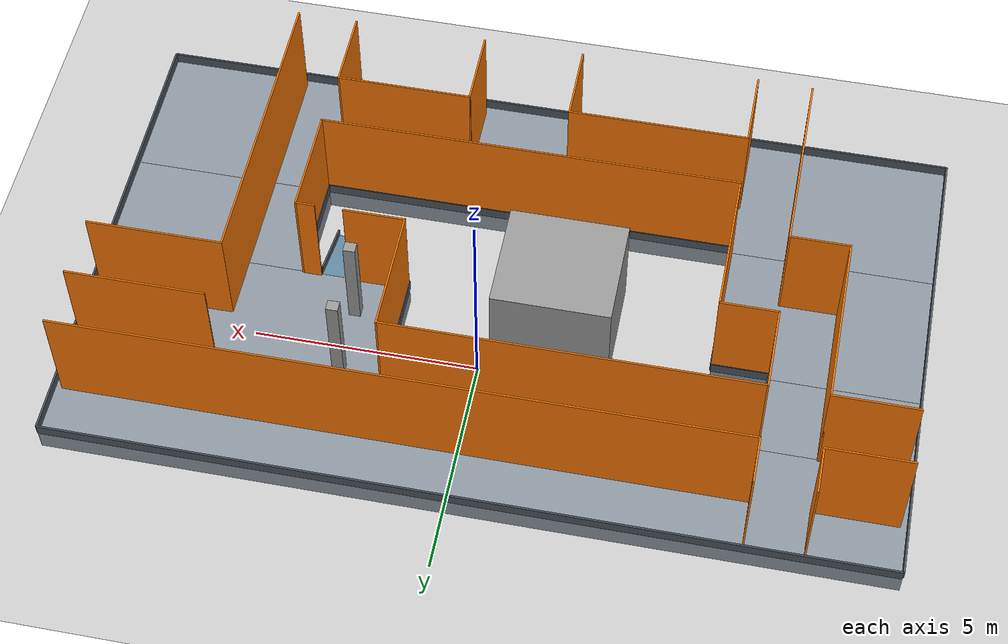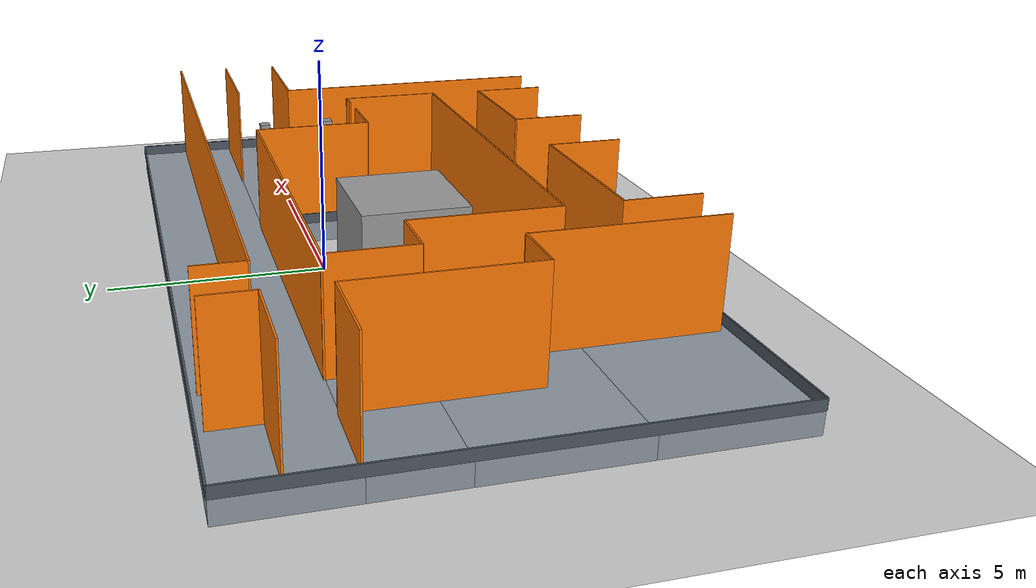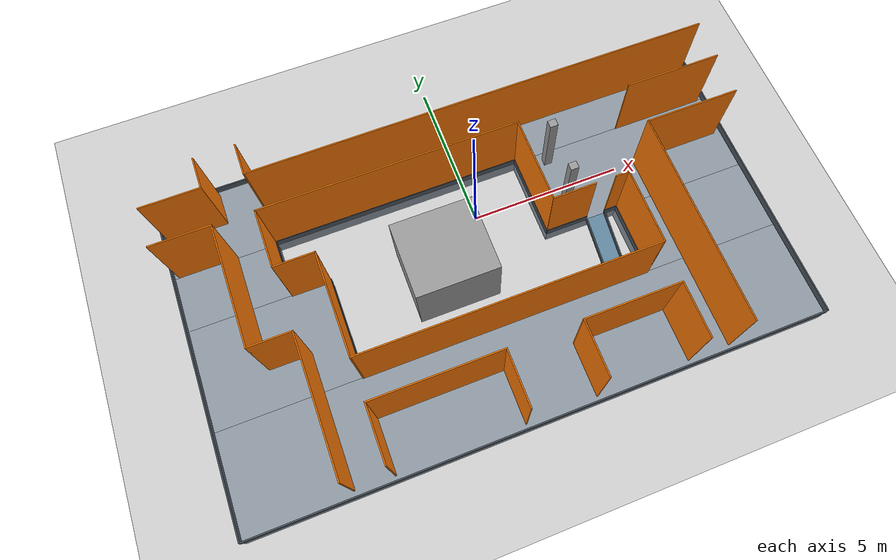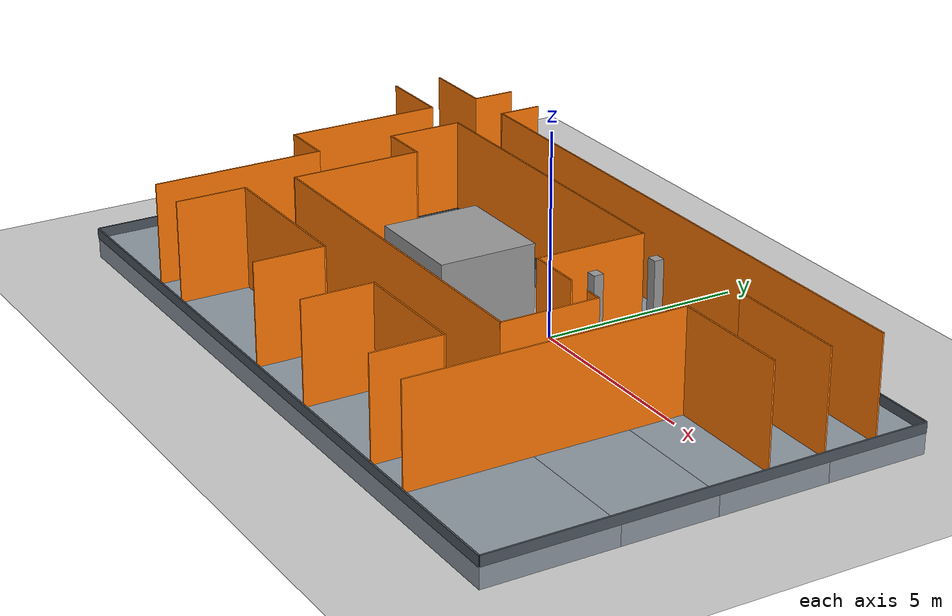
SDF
<sdf version="1.7">
 <world name="default">
  <light name="sun" type="directional">
   <pose>0 0 10 0 -0 0</pose>
   <diffuse>0.8 0.8 0.8 1</diffuse>
   <specular>0.2 0.2 0.2 1</specular>
   <attenuation>
    <range>1000</range>
    <constant>0.9</constant>
    <linear>0.01</linear>
    <quadratic>0.001</quadratic>
   </attenuation>
   <direction>-0.5 0.1 -0.9</direction>
   <spot><inner_angle>0</inner_angle><outer_angle>0</outer_angle><falloff>0</falloff></spot>
  </light>
  <model name="ground_plane">
   <static>1</static>
   <link name="link">
    <collision name="collision">
     <geometry><plane><normal>0 0 1</normal><size>100 100</size></plane></geometry>
     <surface><friction><ode><mu>100</mu><mu2>50</mu2></ode></friction></surface>
    </collision>
    <visual name="visual">
     <cast_shadows>0</cast_shadows>
     <geometry><plane><normal>0 0 1</normal><size>100 100</size></plane></geometry>
     <material>
      <script><uri>file://media/materials/scripts/gazebo.material</uri><name>Gazebo/Grey</name></script>
     </material>
    </visual>
   </link>
  </model>
  <gravity>0 0 -9.8</gravity>
  <magnetic_field>6e-06 2.3e-05 -4.2e-05</magnetic_field>
  <atmosphere type="adiabatic"/>
  <physics type="ode">
   <max_step_size>0.001</max_step_size>
   <real_time_factor>1</real_time_factor>
   <real_time_update_rate>1000</real_time_update_rate>
  </physics>
  <scene><ambient>0.4 0.4 0.4 1</ambient><background>0.7 0.7 0.7 1</background><shadows>1</shadows></scene>
  <audio><device>default</device></audio>
  <spherical_coordinates>
   <surface_model>EARTH_WGS84</surface_model>
   <latitude_deg>0</latitude_deg>
   <longitude_deg>0</longitude_deg>
   <elevation>0</elevation>
   <heading_deg>0</heading_deg>
  </spherical_coordinates>
  <model name="shiyanlou_quarter">
   <pose>-0.26637 -1.67085 0.5 0 -0 0</pose>
   <link name="Wall_110">
    <collision name="Wall_110_Collision">
     <geometry><box><size>3.0625 0.0375 2.5</size></box></geometry>
     <pose>0 0 1.25 0 -0 0</pose>
    </collision>
    <visual name="Wall_110_Visual">
     <pose>0 0 1.25 0 -0 0</pose>
     <geometry><box><size>3.0625 0.0375 2.5</size></box></geometry>
     <material>
      <script><uri>file://media/materials/scripts/gazebo.material</uri><name>Gazebo/Grey</name></script>
      <ambient>0.996078 0.47451 0.0196078 1</ambient>
     </material>
     <meta><layer>0</layer></meta>
    </visual>
    <pose>7.30337 2.8731 0 0 -0 0</pose>
   </link>
   <link name="Wall_116">
    <collision name="Wall_116_Collision">
     <geometry><box><size>6.74275 0.0375 2.5</size></box></geometry>
     <pose>0 0 1.25 0 -0 0</pose>
    </collision>
    <visual name="Wall_116_Visual">
     <pose>0 0 1.25 0 -0 0</pose>
     <geometry><box><size>6.74275 0.0375 2.5</size></box></geometry>
     <material>
      <script><uri>file://media/materials/scripts/gazebo.material</uri><name>Gazebo/Grey</name></script>
      <ambient>0.996078 0.47451 0.0196078 1</ambient>
     </material>
     <meta><layer>0</layer></meta>
    </visual>
    <pose>5.79087 -1.83653 0 0 -0 1.5708</pose>
   </link>
   <link name="Wall_118">
    <collision name="Wall_118_Collision">
     <geometry><box><size>3 0.0375 2.5</size></box></geometry>
     <pose>0 0 1.25 0 -0 0</pose>
    </collision>
    <visual name="Wall_118_Visual">
     <pose>0 0 1.25 0 -0 0</pose>
     <geometry><box><size>3 0.0375 2.5</size></box></geometry>
     <material>
      <script><uri>file://media/materials/scripts/gazebo.material</uri><name>Gazebo/Grey</name></script>
      <ambient>0.996078 0.47451 0.0196078 1</ambient>
     </material>
     <meta><layer>0</layer></meta>
    </visual>
    <pose>7.27212 1.5161 0 0 -0 0</pose>
   </link>
   <link name="Wall_122">
    <collision name="Wall_122_Collision">
     <geometry><box><size>1.75 0.0375 2.5</size></box></geometry>
     <pose>0 0 1.25 0 -0 0</pose>
    </collision>
    <visual name="Wall_122_Visual">
     <pose>0 0 1.25 0 -0 0</pose>
     <geometry><box><size>1.75 0.0375 2.5</size></box></geometry>
     <material>
      <script><uri>file://media/materials/scripts/gazebo.material</uri><name>Gazebo/Grey</name></script>
      <ambient>0.996078 0.47451 0.0196078 1</ambient>
     </material>
     <meta><layer>0</layer></meta>
    </visual>
    <pose>1.45788 -4.32565 0 0 -0 -1.5708</pose>
   </link>
   <link name="Wall_126">
    <collision name="Wall_126_Collision">
     <geometry><box><size>3.0225 0.0375 2.5</size></box></geometry>
     <pose>0 0 1.25 0 -0 0</pose>
    </collision>
    <visual name="Wall_126_Visual">
     <pose>0 0 1.25 0 -0 0</pose>
     <geometry><box><size>3.0225 0.0375 2.5</size></box></geometry>
     <material>
      <script><uri>file://media/materials/scripts/gazebo.material</uri><name>Gazebo/Grey</name></script>
      <ambient>0.996078 0.47451 0.0196078 1</ambient>
     </material>
     <meta><layer>0</layer></meta>
    </visual>
    <pose>2.95038 -3.4694 0 0 -0 0</pose>
   </link>
   <link name="Wall_130">
    <collision name="Wall_130_Collision">
     <geometry><box><size>1.75 0.0375 2.5</size></box></geometry>
     <pose>0 0 1.25 0 -0 0</pose>
    </collision>
    <visual name="Wall_130_Visual">
     <pose>0 0 1.25 0 -0 0</pose>
     <geometry><box><size>1.75 0.0375 2.5</size></box></geometry>
     <material>
      <script><uri>file://media/materials/scripts/gazebo.material</uri><name>Gazebo/Grey</name></script>
      <ambient>0.996078 0.47451 0.0196078 1</ambient>
     </material>
     <meta><layer>0</layer></meta>
    </visual>
    <pose>4.44287 -4.32565 0 0 -0 -1.5708</pose>
   </link>
   <link name="Wall_19">
    <collision name="Wall_19_Collision">
     <geometry><box><size>3.875 0.0375 2.5</size></box></geometry>
     <pose>0 0 1.25 0 -0 0</pose>
    </collision>
    <visual name="Wall_19_Visual">
     <pose>0 0 1.25 0 -0 0</pose>
     <geometry><box><size>3.875 0.0375 2.5</size></box></geometry>
     <material>
      <script><uri>file://media/materials/scripts/gazebo.material</uri><name>Gazebo/Grey</name></script>
      <ambient>0.996078 0.47451 0.0196078 1</ambient>
     </material>
     <meta><layer>0</layer></meta>
    </visual>
    <pose>-7.28637 0.972348 0 0 -0 -1.5708</pose>
   </link>
   <link name="Wall_26">
    <collision name="Wall_26_Collision">
     <geometry><box><size>1.0625 0.0375 2.5</size></box></geometry>
     <pose>0 0 1.25 0 -0 0</pose>
    </collision>
    <visual name="Wall_26_Visual">
     <pose>0 0 1.25 0 -0 0</pose>
     <geometry><box><size>1.0625 0.0375 2.5</size></box></geometry>
     <material>
      <script><uri>file://media/materials/scripts/gazebo.material</uri><name>Gazebo/Grey</name></script>
      <ambient>0.996078 0.47451 0.0196078 1</ambient>
     </material>
     <meta><layer>0</layer></meta>
    </visual>
    <pose>-7.28637 4.6766 0 0 -0 1.5708</pose>
   </link>
   <link name="Wall_31">
    <collision name="Wall_31_Collision">
     <geometry><box><size>1.06266 0.0375 2.5</size></box></geometry>
     <pose>0 0 1.25 0 -0 0</pose>
    </collision>
    <visual name="Wall_31_Visual">
     <pose>0 0 1.25 0 -0 0</pose>
     <geometry><box><size>1.06266 0.0375 2.5</size></box></geometry>
     <material>
      <script><uri>file://media/materials/scripts/gazebo.material</uri><name>Gazebo/Grey</name></script>
      <ambient>0.996078 0.47451 0.0196078 1</ambient>
     </material>
     <meta><layer>0</layer></meta>
    </visual>
    <pose>-6.01337 4.67657 0 0 -0 -1.5708</pose>
   </link>
   <link name="Wall_33">
    <collision name="Wall_33_Collision">
     <geometry><box><size>1.875 0.0375 2.5</size></box></geometry>
     <pose>0 0 1.25 0 -0 0</pose>
    </collision>
    <visual name="Wall_33_Visual">
     <pose>0 0 1.25 0 -0 0</pose>
     <geometry><box><size>1.875 0.0375 2.5</size></box></geometry>
     <material>
      <script><uri>file://media/materials/scripts/gazebo.material</uri><name>Gazebo/Grey</name></script>
      <ambient>0.996078 0.47451 0.0196078 1</ambient>
     </material>
     <meta><layer>0</layer></meta>
    </visual>
    <pose>-8.20513 4.1641 0 0 -0 3.14159</pose>
   </link>
   <link name="Wall_35">
    <collision name="Wall_35_Collision">
     <geometry><box><size>1.875 0.0375 2.5</size></box></geometry>
     <pose>0 0 1.25 0 -0 0</pose>
    </collision>
    <visual name="Wall_35_Visual">
     <pose>0 0 1.25 0 -0 0</pose>
     <geometry><box><size>1.875 0.0375 2.5</size></box></geometry>
     <material>
      <script><uri>file://media/materials/scripts/gazebo.material</uri><name>Gazebo/Grey</name></script>
      <ambient>0.996078 0.47451 0.0196078 1</ambient>
     </material>
     <meta><layer>0</layer></meta>
    </visual>
    <pose>-8.20513 2.8911 0 0 -0 3.14159</pose>
   </link>
   <link name="Wall_38">
    <collision name="Wall_38_Collision">
     <geometry><box><size>1.2785 0.0375 2.5</size></box></geometry>
     <pose>0 0 1.25 0 -0 0</pose>
    </collision>
    <visual name="Wall_38_Visual">
     <pose>0 0 1.25 0 -0 0</pose>
     <geometry><box><size>1.2785 0.0375 2.5</size></box></geometry>
     <material>
      <script><uri>file://media/materials/scripts/gazebo.material</uri><name>Gazebo/Grey</name></script>
      <ambient>0.996078 0.47451 0.0196078 1</ambient>
     </material>
     <meta><layer>0</layer></meta>
    </visual>
    <pose>-5.38762 1.0411 0 0 -0 0</pose>
   </link>
   <link name="Wall_42">
    <collision name="Wall_42_Collision">
     <geometry><box><size>1.33725 0.0375 2.5</size></box></geometry>
     <pose>0 0 1.25 0 -0 0</pose>
    </collision>
    <visual name="Wall_42_Visual">
     <pose>0 0 1.25 0 -0 0</pose>
     <geometry><box><size>1.33725 0.0375 2.5</size></box></geometry>
     <material>
      <script><uri>file://media/materials/scripts/gazebo.material</uri><name>Gazebo/Grey</name></script>
      <ambient>0.996078 0.47451 0.0196078 1</ambient>
     </material>
     <meta><layer>0</layer></meta>
    </visual>
    <pose>-6.6365 -0.946403 0 0 -0 0</pose>
   </link>
   <link name="Wall_44">
    <collision name="Wall_44_Collision">
     <geometry><box><size>3.275 0.0375 2.5</size></box></geometry>
     <pose>0 0 1.25 0 -0 0</pose>
    </collision>
    <visual name="Wall_44_Visual">
     <pose>0 0 1.25 0 -0 0</pose>
     <geometry><box><size>3.275 0.0375 2.5</size></box></geometry>
     <material>
      <script><uri>file://media/materials/scripts/gazebo.material</uri><name>Gazebo/Grey</name></script>
      <ambient>0.996078 0.47451 0.0196078 1</ambient>
     </material>
     <meta><layer>0</layer></meta>
    </visual>
    <pose>-4.76713 -0.577653 0 0 -0 -1.5708</pose>
   </link>
   <link name="Wall_48">
    <collision name="Wall_48_Collision">
     <geometry><box><size>9.3225 0.0375 2.5</size></box></geometry>
     <pose>0 0 1.25 0 -0 0</pose>
    </collision>
    <visual name="Wall_48_Visual">
     <pose>0 0 1.25 0 -0 0</pose>
     <geometry><box><size>9.3225 0.0375 2.5</size></box></geometry>
     <material>
      <script><uri>file://media/materials/scripts/gazebo.material</uri><name>Gazebo/Grey</name></script>
      <ambient>0.996078 0.47451 0.0196078 1</ambient>
     </material>
     <meta><layer>0</layer></meta>
    </visual>
    <pose>-0.124625 -2.1964 0 0 -0 0</pose>
   </link>
   <link name="Wall_5">
    <collision name="Wall_5_Collision">
     <geometry><box><size>14.8938 0.0375 2.5</size></box></geometry>
     <pose>0 0 1.25 0 -0 0</pose>
    </collision>
    <visual name="Wall_5_Visual">
     <pose>0 0 1.25 0 -0 0</pose>
     <geometry><box><size>14.8938 0.0375 2.5</size></box></geometry>
     <material>
      <script><uri>file://media/materials/scripts/gazebo.material</uri><name>Gazebo/Grey</name></script>
      <ambient>0.996078 0.47451 0.0196078 1</ambient>
     </material>
     <meta><layer>0</layer></meta>
    </visual>
    <pose>1.41475 4.1641 0 0 -0 0</pose>
   </link>
   <link name="Wall_52">
    <collision name="Wall_52_Collision">
     <geometry><box><size>4.0125 0.0375 2.5</size></box></geometry>
     <pose>0 0 1.25 0 -0 0</pose>
    </collision>
    <visual name="Wall_52_Visual">
     <pose>0 0 1.25 0 -0 0</pose>
     <geometry><box><size>4.0125 0.0375 2.5</size></box></geometry>
     <material>
      <script><uri>file://media/materials/scripts/gazebo.material</uri><name>Gazebo/Grey</name></script>
      <ambient>0.996078 0.47451 0.0196078 1</ambient>
     </material>
     <meta><layer>0</layer></meta>
    </visual>
    <pose>-2.77962 -3.4694 0 0 -0 0</pose>
   </link>
   <link name="Wall_54">
    <collision name="Wall_54_Collision">
     <geometry><box><size>1.75 0.0375 2.5</size></box></geometry>
     <pose>0 0 1.25 0 -0 0</pose>
    </collision>
    <visual name="Wall_54_Visual">
     <pose>0 0 1.25 0 -0 0</pose>
     <geometry><box><size>1.75 0.0375 2.5</size></box></geometry>
     <material>
      <script><uri>file://media/materials/scripts/gazebo.material</uri><name>Gazebo/Grey</name></script>
      <ambient>0.996078 0.47451 0.0196078 1</ambient>
     </material>
     <meta><layer>0</layer></meta>
    </visual>
    <pose>-4.76713 -4.32565 0 0 -0 -1.5708</pose>
   </link>
   <link name="Wall_60">
    <collision name="Wall_60_Collision">
     <geometry><box><size>4.24275 0.0375 2.5</size></box></geometry>
     <pose>0 0 1.25 0 -0 0</pose>
    </collision>
    <visual name="Wall_60_Visual">
     <pose>0 0 1.25 0 -0 0</pose>
     <geometry><box><size>4.24275 0.0375 2.5</size></box></geometry>
     <material>
      <script><uri>file://media/materials/scripts/gazebo.material</uri><name>Gazebo/Grey</name></script>
      <ambient>0.996078 0.47451 0.0196078 1</ambient>
     </material>
     <meta><layer>0</layer></meta>
    </visual>
    <pose>-5.98663 -3.04902 0 0 -0 -1.5708</pose>
   </link>
   <link name="Wall_62">
    <collision name="Wall_62_Collision">
     <geometry><box><size>1.75 0.0375 2.5</size></box></geometry>
     <pose>0 0 1.25 0 -0 0</pose>
    </collision>
    <visual name="Wall_62_Visual">
     <pose>0 0 1.25 0 -0 0</pose>
     <geometry><box><size>1.75 0.0375 2.5</size></box></geometry>
     <material>
      <script><uri>file://media/materials/scripts/gazebo.material</uri><name>Gazebo/Grey</name></script>
      <ambient>0.996078 0.47451 0.0196078 1</ambient>
     </material>
     <meta><layer>0</layer></meta>
    </visual>
    <pose>-0.792125 -4.32565 0 0 -0 -1.5708</pose>
   </link>
   <link name="Wall_70">
    <collision name="Wall_70_Collision">
     <geometry><box><size>2.4 0.0375 2.5</size></box></geometry>
     <pose>0 0 1.25 0 -0 0</pose>
    </collision>
    <visual name="Wall_70_Visual">
     <pose>0 0 1.25 0 -0 0</pose>
     <geometry><box><size>2.4 0.0375 2.5</size></box></geometry>
     <material>
      <script><uri>file://media/materials/scripts/gazebo.material</uri><name>Gazebo/Grey</name></script>
      <ambient>0.996078 0.47451 0.0196078 1</ambient>
     </material>
     <meta><layer>0</layer></meta>
    </visual>
    <pose>4.51788 -1.01515 0 0 -0 1.5708</pose>
   </link>
   <link name="Wall_72">
    <collision name="Wall_72_Collision">
     <geometry><box><size>0.4375 0.0375 2.5</size></box></geometry>
     <pose>0 0 1.25 0 -0 0</pose>
    </collision>
    <visual name="Wall_72_Visual">
     <pose>0 0 1.25 0 -0 0</pose>
     <geometry><box><size>0.4375 0.0375 2.5</size></box></geometry>
     <material>
      <script><uri>file://media/materials/scripts/gazebo.material</uri><name>Gazebo/Grey</name></script>
      <ambient>0.996078 0.47451 0.0196078 1</ambient>
     </material>
     <meta><layer>0</layer></meta>
    </visual>
    <pose>4.31787 0.166098 0 0 -0 3.14159</pose>
   </link>
   <link name="Wall_81">
    <collision name="Wall_81_Collision">
     <geometry><box><size>1.375 0.0375 2.5</size></box></geometry>
     <pose>0 0 1.25 0 -0 0</pose>
    </collision>
    <visual name="Wall_81_Visual">
     <pose>0 0 1.25 0 -0 0</pose>
     <geometry><box><size>1.375 0.0375 2.5</size></box></geometry>
     <material>
      <script><uri>file://media/materials/scripts/gazebo.material</uri><name>Gazebo/Grey</name></script>
      <ambient>0.996078 0.47451 0.0196078 1</ambient>
     </material>
     <meta><layer>0</layer></meta>
    </visual>
    <pose>2.79162 0.166098 0 0 -0 3.14159</pose>
   </link>
   <link name="Wall_83">
    <collision name="Wall_83_Collision">
     <geometry><box><size>2.75 0.0375 2.5</size></box></geometry>
     <pose>0 0 1.25 0 -0 0</pose>
    </collision>
    <visual name="Wall_83_Visual">
     <pose>0 0 1.25 0 -0 0</pose>
     <geometry><box><size>2.75 0.0375 2.5</size></box></geometry>
     <material>
      <script><uri>file://media/materials/scripts/gazebo.material</uri><name>Gazebo/Grey</name></script>
      <ambient>0.996078 0.47451 0.0196078 1</ambient>
     </material>
     <meta><layer>0</layer></meta>
    </visual>
    <pose>2.12062 1.53485 0 0 -0 -1.5708</pose>
   </link>
   <link name="Wall_87">
    <collision name="Wall_87_Collision">
     <geometry><box><size>1.87504 0.0375 2.5</size></box></geometry>
     <pose>0 0 1.25 0 -0 0</pose>
    </collision>
    <visual name="Wall_87_Visual">
     <pose>0 0 1.25 0 -0 0</pose>
     <geometry><box><size>1.87504 0.0375 2.5</size></box></geometry>
     <material>
      <script><uri>file://media/materials/scripts/gazebo.material</uri><name>Gazebo/Grey</name></script>
      <ambient>0.996078 0.47451 0.0196078 1</ambient>
     </material>
     <meta><layer>0</layer></meta>
    </visual>
    <pose>-6.01337 1.97235 0 0 -0 -1.5708</pose>
   </link>
   <link name="Wall_91">
    <collision name="Wall_91_Collision">
     <geometry><box><size>8.16512 0.0375 2.5</size></box></geometry>
     <pose>0 0 1.25 0 -0 0</pose>
    </collision>
    <visual name="Wall_91_Visual">
     <pose>0 0 1.25 0 -0 0</pose>
     <geometry><box><size>8.16512 0.0375 2.5</size></box></geometry>
     <material>
      <script><uri>file://media/materials/scripts/gazebo.material</uri><name>Gazebo/Grey</name></script>
      <ambient>0.996078 0.47451 0.0196078 1</ambient>
     </material>
     <meta><layer>0</layer></meta>
    </visual>
    <pose>-1.94956 2.8911 0 0 -0 0</pose>
   </link>
   <static>1</static>
  </model>
  <model name="shiyanlou_upper_floor">
   <static>true</static>
   <link name="floor_west_lower">
    <pose>-7.28735 -2.22965 0.25 0 0 0</pose>
    <collision name="collision">
     <geometry><box><size>4.5453 3.2375 0.5</size></box></geometry>
     <surface><friction><ode><mu>1</mu><mu2>1</mu2></ode></friction></surface>
    </collision>
    <visual name="visual">
     <geometry><box><size>4.5453 3.2375 0.5</size></box></geometry>
     <material><ambient>0.55 0.59 0.63 1</ambient><diffuse>0.55 0.59 0.63 1</diffuse></material>
    </visual>
   </link>
   <link name="floor_west_upper">
    <pose>-7.91045 0.29525 0.25 0 0 0</pose>
    <collision name="collision">
     <geometry><box><size>3.2991 1.8123 0.5</size></box></geometry>
     <surface><friction><ode><mu>1</mu><mu2>1</mu2></ode></friction></surface>
    </collision>
    <visual name="visual">
     <geometry><box><size>3.2991 1.8123 0.5</size></box></geometry>
     <material><ambient>0.55 0.59 0.63 1</ambient><diffuse>0.55 0.59 0.63 1</diffuse></material>
    </visual>
   </link>
   <link name="floor_south">
    <pose>-0.405 -5.4392 0.25 0 0 0</pose>
    <collision name="collision">
     <geometry><box><size>18.31 3.1816 0.5</size></box></geometry>
     <surface><friction><ode><mu>1</mu><mu2>1</mu2></ode></friction></surface>
    </collision>
    <visual name="visual">
     <geometry><box><size>18.31 3.1816 0.5</size></box></geometry>
     <material><ambient>0.55 0.59 0.63 1</ambient><diffuse>0.55 0.59 0.63 1</diffuse></material>
    </visual>
   </link>
   <link name="floor_north">
    <pose>-0.405 2.4457 0.25 0 0 0</pose>
    <collision name="collision">
     <geometry><box><size>18.31 2.4886 0.5</size></box></geometry>
     <surface><friction><ode><mu>1</mu><mu2>1</mu2></ode></friction></surface>
    </collision>
    <visual name="visual">
     <geometry><box><size>18.31 2.4886 0.5</size></box></geometry>
     <material><ambient>0.55 0.59 0.63 1</ambient><diffuse>0.55 0.59 0.63 1</diffuse></material>
    </visual>
   </link>
   <link name="floor_east_south">
    <pose>6.4913 -2.686 0.25 0 0 0</pose>
    <collision name="collision">
     <geometry><box><size>4.5174 2.3248 0.5</size></box></geometry>
     <surface><friction><ode><mu>1</mu><mu2>1</mu2></ode></friction></surface>
    </collision>
    <visual name="visual">
     <geometry><box><size>4.5174 2.3248 0.5</size></box></geometry>
     <material><ambient>0.55 0.59 0.63 1</ambient><diffuse>0.55 0.59 0.63 1</diffuse></material>
    </visual>
   </link>
   <link name="floor_east_north">
    <pose>5.2927 -0.1611 0.25 0 0 0</pose>
    <collision name="collision">
     <geometry><box><size>6.9146 2.725 0.5</size></box></geometry>
     <surface><friction><ode><mu>1</mu><mu2>1</mu2></ode></friction></surface>
    </collision>
    <visual name="visual">
     <geometry><box><size>6.9146 2.725 0.5</size></box></geometry>
     <material><ambient>0.55 0.59 0.63 1</ambient><diffuse>0.55 0.59 0.63 1</diffuse></material>
    </visual>
   </link>
   <link name="guard_south">
    <pose>-0.405 -7.03 0.625 0 0 0</pose>
    <collision name="collision"><geometry><box><size>18.31 0.04 0.25</size></box></geometry></collision>
    <visual name="visual">
     <geometry><box><size>18.31 0.04 0.25</size></box></geometry>
     <material><ambient>0.3 0.34 0.38 1</ambient><diffuse>0.3 0.34 0.38 1</diffuse></material>
    </visual>
   </link>
   <link name="guard_east">
    <pose>8.75 -1.67 0.625 0 0 0</pose>
    <collision name="collision"><geometry><box><size>0.04 10.72 0.25</size></box></geometry></collision>
    <visual name="visual">
     <geometry><box><size>0.04 10.72 0.25</size></box></geometry>
     <material><ambient>0.3 0.34 0.38 1</ambient><diffuse>0.3 0.34 0.38 1</diffuse></material>
    </visual>
   </link>
   <link name="guard_inner_top">
    <pose>-2.21275 1.2014 0.625 0 0 0</pose>
    <collision name="collision"><geometry><box><size>8.0963 0.04 0.25</size></box></geometry></collision>
    <visual name="visual">
     <geometry><box><size>8.0963 0.04 0.25</size></box></geometry>
     <material><ambient>0.3 0.34 0.38 1</ambient><diffuse>0.3 0.34 0.38 1</diffuse></material>
    </visual>
   </link>
   <link name="guard_inner_right_upper">
    <pose>1.8354 -0.1611 0.625 0 0 0</pose>
    <collision name="collision"><geometry><box><size>0.04 2.725 0.25</size></box></geometry></collision>
    <visual name="visual">
     <geometry><box><size>0.04 2.725 0.25</size></box></geometry>
     <material><ambient>0.3 0.34 0.38 1</ambient><diffuse>0.3 0.34 0.38 1</diffuse></material>
    </visual>
   </link>
   <link name="guard_door_right">
    <pose>4.02767248 -1.5236 0.625 0 0 0</pose>
    <collision name="collision"><geometry><box><size>0.40985505 0.04 0.25</size></box></geometry></collision>
    <visual name="visual">
     <geometry><box><size>0.40985505 0.04 0.25</size></box></geometry>
     <material><ambient>0.3 0.34 0.38 1</ambient><diffuse>0.3 0.34 0.38 1</diffuse></material>
    </visual>
   </link>
   <link name="guard_door_left">
    <pose>2.52907253 -1.5236 0.625 0 0 0</pose>
    <collision name="collision"><geometry><box><size>1.38734505 0.04 0.25</size></box></geometry></collision>
    <visual name="visual">
     <geometry><box><size>1.38734505 0.04 0.25</size></box></geometry>
     <material><ambient>0.3 0.34 0.38 1</ambient><diffuse>0.3 0.34 0.38 1</diffuse></material>
    </visual>
   </link>
   <link name="guard_inner_right_lower">
    <pose>4.2326 -2.686 0.625 0 0 0</pose>
    <collision name="collision"><geometry><box><size>0.04 2.3248 0.25</size></box></geometry></collision>
    <visual name="visual">
     <geometry><box><size>0.04 2.3248 0.25</size></box></geometry>
     <material><ambient>0.3 0.34 0.38 1</ambient><diffuse>0.3 0.34 0.38 1</diffuse></material>
    </visual>
   </link>
   <link name="guard_inner_bottom">
    <pose>-0.39105 -3.8484 0.625 0 0 0</pose>
    <collision name="collision"><geometry><box><size>9.2473 0.04 0.25</size></box></geometry></collision>
    <visual name="visual">
     <geometry><box><size>9.2473 0.04 0.25</size></box></geometry>
     <material><ambient>0.3 0.34 0.38 1</ambient><diffuse>0.3 0.34 0.38 1</diffuse></material>
    </visual>
   </link>
   <link name="guard_inner_left_lower">
    <pose>-5.0147 -2.22965 0.625 0 0 0</pose>
    <collision name="collision"><geometry><box><size>0.04 3.2375 0.25</size></box></geometry></collision>
    <visual name="visual">
     <geometry><box><size>0.04 3.2375 0.25</size></box></geometry>
     <material><ambient>0.3 0.34 0.38 1</ambient><diffuse>0.3 0.34 0.38 1</diffuse></material>
    </visual>
   </link>
   <link name="guard_inner_step">
    <pose>-5.6378 -0.6109 0.625 0 0 0</pose>
    <collision name="collision"><geometry><box><size>1.2462 0.04 0.25</size></box></geometry></collision>
    <visual name="visual">
     <geometry><box><size>1.2462 0.04 0.25</size></box></geometry>
     <material><ambient>0.3 0.34 0.38 1</ambient><diffuse>0.3 0.34 0.38 1</diffuse></material>
    </visual>
   </link>
   <link name="guard_inner_left_upper">
    <pose>-6.2609 0.29525 0.625 0 0 0</pose>
    <collision name="collision"><geometry><box><size>0.04 1.8123 0.25</size></box></geometry></collision>
    <visual name="visual">
     <geometry><box><size>0.04 1.8123 0.25</size></box></geometry>
     <material><ambient>0.3 0.34 0.38 1</ambient><diffuse>0.3 0.34 0.38 1</diffuse></material>
    </visual>
   </link>
   <link name="guard_north">
    <pose>-0.405 3.69 0.625 0 0 0</pose>
    <collision name="collision"><geometry><box><size>18.31 0.04 0.25</size></box></geometry></collision>
    <visual name="visual">
     <geometry><box><size>18.31 0.04 0.25</size></box></geometry>
     <material><ambient>0.3 0.34 0.38 1</ambient><diffuse>0.3 0.34 0.38 1</diffuse></material>
    </visual>
   </link>
   <link name="guard_west">
    <pose>-9.56 -1.67 0.625 0 0 0</pose>
    <collision name="collision"><geometry><box><size>0.04 10.72 0.25</size></box></geometry></collision>
    <visual name="visual">
     <geometry><box><size>0.04 10.72 0.25</size></box></geometry>
     <material><ambient>0.3 0.34 0.38 1</ambient><diffuse>0.3 0.34 0.38 1</diffuse></material>
    </visual>
   </link>
  </model>
  <model name="shiyanlou_entrance_ramp">
   <static>true</static>
   <pose>3.522745 -2.2656943058 0.2262829175 0 -0.3217505544 1.5707963268</pose>
   <link name="deck">
    <collision name="collision">
     <geometry><box><size>1.5811388301 0.5999999005 0.05</size></box></geometry>
     <surface><friction><ode><mu>1</mu><mu2>1</mu2></ode></friction></surface>
    </collision>
    <visual name="visual">
     <geometry><box><size>1.5811388301 0.5999999005 0.05</size></box></geometry>
     <material><ambient>0.4 0.55 0.65 1</ambient><diffuse>0.4 0.55 0.65 1</diffuse></material>
    </visual>
   </link>
   <link name="left_edge">
    <pose>0 0.32 0.1 0 0 0</pose>
    <collision name="collision"><geometry><box><size>1.5811388301 0.04 0.15</size></box></geometry></collision>
    <visual name="visual">
     <geometry><box><size>1.5811388301 0.04 0.15</size></box></geometry>
     <material><ambient>0.3 0.34 0.38 1</ambient><diffuse>0.3 0.34 0.38 1</diffuse></material>
    </visual>
   </link>
   <link name="right_edge">
    <pose>0 -0.32 0.1 0 0 0</pose>
    <collision name="collision"><geometry><box><size>1.5811388301 0.04 0.15</size></box></geometry></collision>
    <visual name="visual">
     <geometry><box><size>1.5811388301 0.04 0.15</size></box></geometry>
     <material><ambient>0.3 0.34 0.38 1</ambient><diffuse>0.3 0.34 0.38 1</diffuse></material>
    </visual>
   </link>
  </model>
  <model name="unit_box">
   <pose>-1.52569 -1.4966 1.16084 0 -0 6.1e-05</pose>
   <link name="link">
    <inertial>
     <mass>1</mass>
     <inertia>
      <ixx>0.166667</ixx>
      <ixy>0</ixy>
      <ixz>0</ixz>
      <iyy>0.166667</iyy>
      <iyz>0</iyz>
      <izz>0.166667</izz>
     </inertia>
    </inertial>
    <collision name="collision"><geometry><box><size>2.61987 2.42119 2.32167</size></box></geometry></collision>
    <visual name="visual">
     <geometry><box><size>2.61987 2.42119 2.32167</size></box></geometry>
     <material>
      <script><name>Gazebo/Grey</name><uri>file://media/materials/scripts/gazebo.material</uri></script>
     </material>
    </visual>
   </link>
  </model>
  <model name="unit_box_0_clone">
   <pose>2.86314 -0.673354 1.67313 7e-06 -8e-06 0.010661</pose>
   <link name="link">
    <inertial>
     <mass>1</mass>
     <inertia>
      <ixx>0.166667</ixx>
      <ixy>0</ixy>
      <ixz>0</ixz>
      <iyy>0.166667</iyy>
      <iyz>0</iyz>
      <izz>0.166667</izz>
     </inertia>
    </inertial>
    <collision name="collision"><geometry><box><size>0.259842 0.236545 2.34625</size></box></geometry></collision>
    <visual name="visual">
     <geometry><box><size>0.259842 0.236545 2.34625</size></box></geometry>
     <material>
      <script><name>Gazebo/Grey</name><uri>file://media/materials/scripts/gazebo.material</uri></script>
     </material>
    </visual>
   </link>
  </model>
  <model name="unit_box_0_clone_clone">
   <pose>2.85851 0.883934 1.67313 5e-06 0 0.010644</pose>
   <link name="link">
    <inertial>
     <mass>1</mass>
     <inertia>
      <ixx>0.166667</ixx>
      <ixy>0</ixy>
      <ixz>0</ixz>
      <iyy>0.166667</iyy>
      <iyz>0</iyz>
      <izz>0.166667</izz>
     </inertia>
    </inertial>
    <collision name="collision"><geometry><box><size>0.259842 0.236545 2.34625</size></box></geometry></collision>
    <visual name="visual">
     <geometry><box><size>0.259842 0.236545 2.34625</size></box></geometry>
     <material>
      <script><name>Gazebo/Grey</name><uri>file://media/materials/scripts/gazebo.material</uri></script>
     </material>
    </visual>
   </link>
  </model>
 </world>
</sdf>
